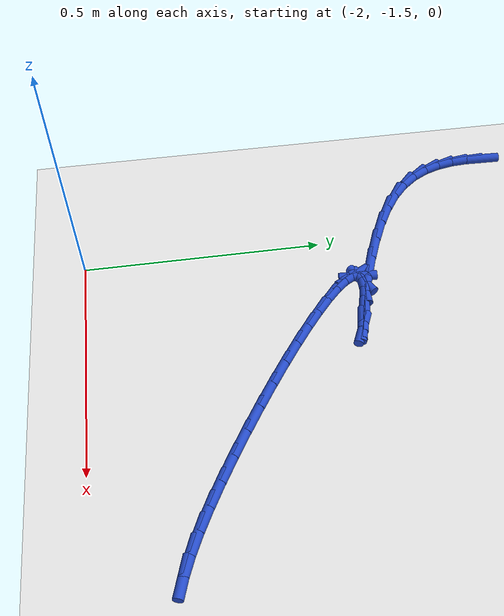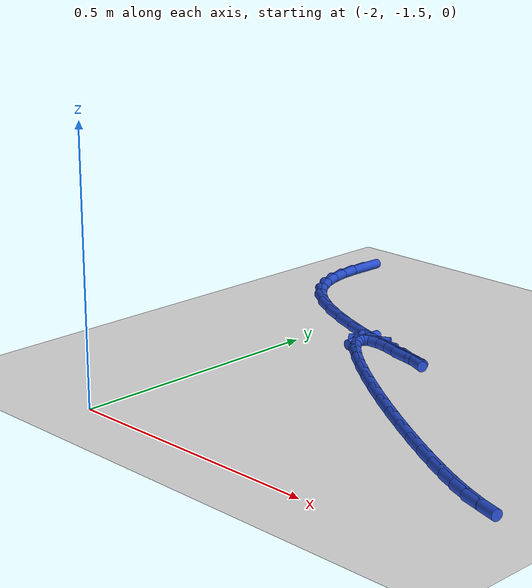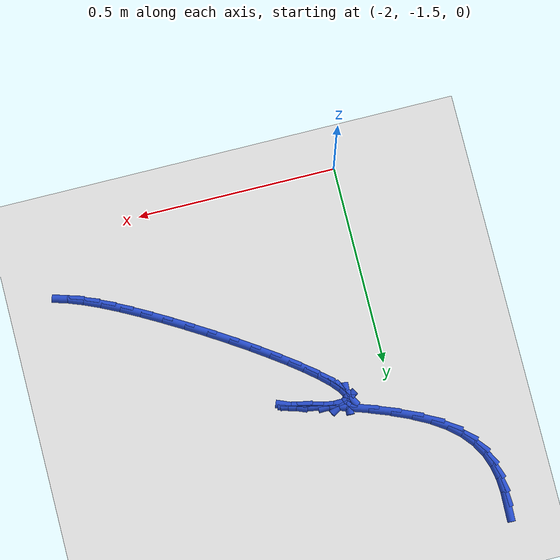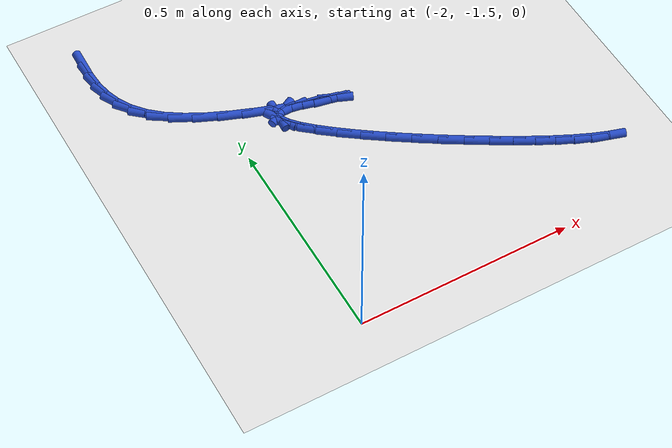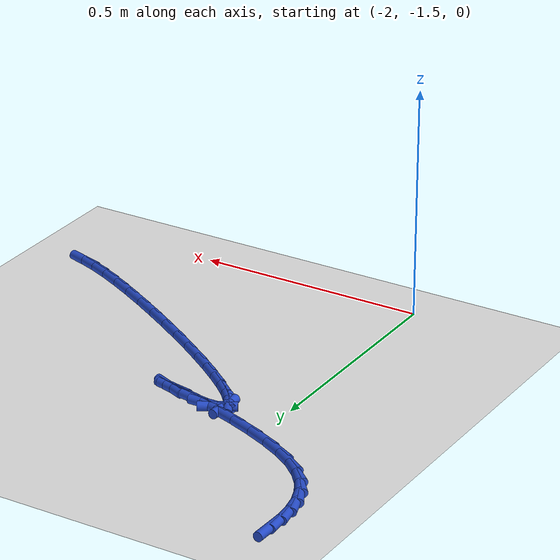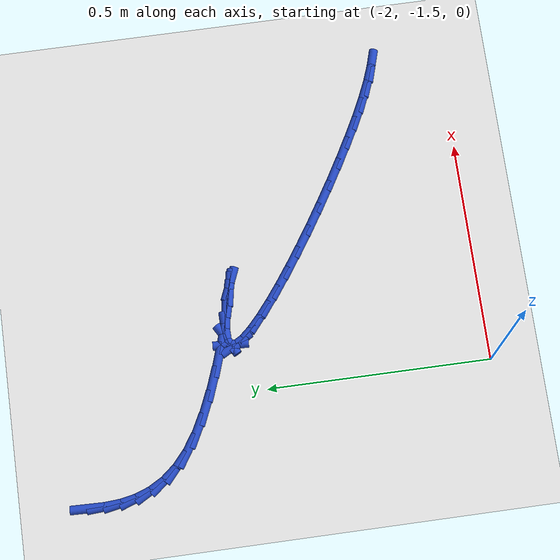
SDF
<sdf version="1.6">
 <world name="default">
  <model name="ground_plane">
   <static>1</static>
   <link name="link">
    <collision name="collision">
     <geometry><plane><normal>0 0 1</normal><size>100 100</size></plane></geometry>
     <surface><friction><ode><mu>100</mu><mu2>50</mu2></ode></friction></surface>
    </collision>
    <visual name="visual">
     <cast_shadows>0</cast_shadows>
     <geometry><plane><normal>0 0 1</normal><size>100 100</size></plane></geometry>
     <material>
      <script><uri>file://media/materials/scripts/gazebo.material</uri><name>Gazebo/WhiteGlow</name></script>
     </material>
    </visual>
   </link>
  </model>
  <model name="line">
   <link name="link_142">
    <pose>-2.2060614680005473 -0.5824622006342828 0.01 0 1.57 1.5439540540339907</pose>
    <collision name="collision">
     <geometry><cylinder><radius>0.01</radius><length>0.08</length></cylinder></geometry>
    </collision>
    <visual name="visual">
     <material>
      <script><name>Gazebo/Blue</name><uri>file://media/materials/scripts/gazebo.material</uri></script>
     </material>
     <geometry><cylinder><radius>0.01</radius><length>0.08</length></cylinder></geometry>
    </visual>
   </link>
   <link name="link_143">
    <pose>-2.2070286627298796 -0.6184860662882931 0.01 0 1.57 -1.50267708291021</pose>
    <collision name="collision">
     <geometry><cylinder><radius>0.01</radius><length>0.08</length></cylinder></geometry>
    </collision>
    <visual name="visual">
     <material>
      <script><name>Gazebo/Blue</name><uri>file://media/materials/scripts/gazebo.material</uri></script>
     </material>
     <geometry><cylinder><radius>0.01</radius><length>0.08</length></cylinder></geometry>
    </visual>
   </link>
   <link name="link_144">
    <pose>-2.2046374664998103 -0.6535348481204029 0.01 0 1.57 -1.3780175634742247</pose>
    <collision name="collision">
     <geometry><cylinder><radius>0.01</radius><length>0.08</length></cylinder></geometry>
    </collision>
    <visual name="visual">
     <material>
      <script><name>Gazebo/Blue</name><uri>file://media/materials/scripts/gazebo.material</uri></script>
     </material>
     <geometry><cylinder><radius>0.01</radius><length>0.08</length></cylinder></geometry>
    </visual>
   </link>
   <link name="link_145">
    <pose>-2.1980136019360077 -0.6874680717013321 0.01 0 1.57 -1.2261344641253864</pose>
    <collision name="collision">
     <geometry><cylinder><radius>0.01</radius><length>0.08</length></cylinder></geometry>
    </collision>
    <visual name="visual">
     <material>
      <script><name>Gazebo/Blue</name><uri>file://media/materials/scripts/gazebo.material</uri></script>
     </material>
     <geometry><cylinder><radius>0.01</radius><length>0.08</length></cylinder></geometry>
    </visual>
   </link>
   <link name="link_146">
    <pose>-2.1862827916641425 -0.7201452626018013 0.01 0 1.57 -1.0555785944395093</pose>
    <collision name="collision">
     <geometry><cylinder><radius>0.01</radius><length>0.08</length></cylinder></geometry>
    </collision>
    <visual name="visual">
     <material>
      <script><name>Gazebo/Blue</name><uri>file://media/materials/scripts/gazebo.material</uri></script>
     </material>
     <geometry><cylinder><radius>0.01</radius><length>0.08</length></cylinder></geometry>
    </visual>
   </link>
   <link name="link_147">
    <pose>-2.1685707583098806 -0.7514259463925312 0.01 0 1.57 -0.8804168311734535</pose>
    <collision name="collision">
     <geometry><cylinder><radius>0.01</radius><length>0.08</length></cylinder></geometry>
    </collision>
    <visual name="visual">
     <material>
      <script><name>Gazebo/Blue</name><uri>file://media/materials/scripts/gazebo.material</uri></script>
     </material>
     <geometry><cylinder><radius>0.01</radius><length>0.08</length></cylinder></geometry>
    </visual>
   </link>
   <link name="link_148">
    <pose>-2.1440032244988947 -0.7811696486442407 0.01 0 1.57 -0.7154195747433033</pose>
    <collision name="collision">
     <geometry><cylinder><radius>0.01</radius><length>0.08</length></cylinder></geometry>
    </collision>
    <visual name="visual">
     <material>
      <script><name>Gazebo/Blue</name><uri>file://media/materials/scripts/gazebo.material</uri></script>
     </material>
     <geometry><cylinder><radius>0.01</radius><length>0.08</length></cylinder></geometry>
    </visual>
   </link>
   <link name="link_149">
    <pose>-2.111705912856851 -0.8092358949276504 0.01 0 1.57 -0.5733788609735283</pose>
    <collision name="collision">
     <geometry><cylinder><radius>0.01</radius><length>0.08</length></cylinder></geometry>
    </collision>
    <visual name="visual">
     <material>
      <script><name>Gazebo/Blue</name><uri>file://media/materials/scripts/gazebo.material</uri></script>
     </material>
     <geometry><cylinder><radius>0.01</radius><length>0.08</length></cylinder></geometry>
    </visual>
   </link>
   <link name="link_150">
    <pose>-2.0710723477474864 -0.8354748550734248 0.01 0 1.57 -0.4730184880661045</pose>
    <collision name="collision">
     <geometry><cylinder><radius>0.01</radius><length>0.08</length></cylinder></geometry>
    </collision>
    <visual name="visual">
     <material>
      <script><name>Gazebo/Blue</name><uri>file://media/materials/scripts/gazebo.material</uri></script>
     </material>
     <geometry><cylinder><radius>0.01</radius><length>0.08</length></cylinder></geometry>
    </visual>
   </link>
   <link name="link_151">
    <pose>-2.023823428511451 -0.8596553913170898 0.01 0 1.57 -0.4051396089160203</pose>
    <collision name="collision">
     <geometry><cylinder><radius>0.01</radius><length>0.08</length></cylinder></geometry>
    </collision>
    <visual name="visual">
     <material>
      <script><name>Gazebo/Blue</name><uri>file://media/materials/scripts/gazebo.material</uri></script>
     </material>
     <geometry><cylinder><radius>0.01</radius><length>0.08</length></cylinder></geometry>
    </visual>
   </link>
   <link name="link_152">
    <pose>-1.972876926422738 -0.88150455278732 0.01 0 1.57 -0.35623928165554297</pose>
    <collision name="collision">
     <geometry><cylinder><radius>0.01</radius><length>0.08</length></cylinder></geometry>
    </collision>
    <visual name="visual">
     <material>
      <script><name>Gazebo/Blue</name><uri>file://media/materials/scripts/gazebo.material</uri></script>
     </material>
     <geometry><cylinder><radius>0.01</radius><length>0.08</length></cylinder></geometry>
    </visual>
   </link>
   <link name="link_153">
    <pose>-1.921160460219138 -0.9007490445884683 0.01 0 1.57 -0.3189680747272209</pose>
    <collision name="collision">
     <geometry><cylinder><radius>0.01</radius><length>0.08</length></cylinder></geometry>
    </collision>
    <visual name="visual">
     <material>
      <script><name>Gazebo/Blue</name><uri>file://media/materials/scripts/gazebo.material</uri></script>
     </material>
     <geometry><cylinder><radius>0.01</radius><length>0.08</length></cylinder></geometry>
    </visual>
   </link>
   <link name="link_154">
    <pose>-1.871601648638444 -0.9171155718248878 0.01 0 1.57 -0.2888391577044447</pose>
    <collision name="collision">
     <geometry><cylinder><radius>0.01</radius><length>0.08</length></cylinder></geometry>
    </collision>
    <visual name="visual">
     <material>
      <script><name>Gazebo/Blue</name><uri>file://media/materials/scripts/gazebo.material</uri></script>
     </material>
     <geometry><cylinder><radius>0.01</radius><length>0.08</length></cylinder></geometry>
    </visual>
   </link>
   <link name="link_155">
    <pose>-1.8271281104184451 -0.9303308396009303 0.01 0 1.57 -0.26233957564700644</pose>
    <collision name="collision">
     <geometry><cylinder><radius>0.01</radius><length>0.08</length></cylinder></geometry>
    </collision>
    <visual name="visual">
     <material>
      <script><name>Gazebo/Blue</name><uri>file://media/materials/scripts/gazebo.material</uri></script>
     </material>
     <geometry><cylinder><radius>0.01</radius><length>0.08</length></cylinder></geometry>
    </visual>
   </link>
   <link name="link_156">
    <pose>-1.7906674642969356 -0.9401215530209491 0.01 0 1.57 -0.2343601988529932</pose>
    <collision name="collision">
     <geometry><cylinder><radius>0.01</radius><length>0.08</length></cylinder></geometry>
    </collision>
    <visual name="visual">
     <material>
      <script><name>Gazebo/Blue</name><uri>file://media/materials/scripts/gazebo.material</uri></script>
     </material>
     <geometry><cylinder><radius>0.01</radius><length>0.08</length></cylinder></geometry>
    </visual>
   </link>
   <link name="link_157">
    <pose>-1.7651473290117061 -0.946214417189297 0.01 0 1.57 -0.18011713061698176</pose>
    <collision name="collision">
     <geometry><cylinder><radius>0.01</radius><length>0.08</length></cylinder></geometry>
    </collision>
    <visual name="visual">
     <material>
      <script><name>Gazebo/Blue</name><uri>file://media/materials/scripts/gazebo.material</uri></script>
     </material>
     <geometry><cylinder><radius>0.01</radius><length>0.08</length></cylinder></geometry>
    </visual>
   </link>
   <link name="link_158">
    <pose>-1.7534953233005475 -0.9483361372103264 0.01 0 1.57 -0.39138928292513353</pose>
    <collision name="collision">
     <geometry><cylinder><radius>0.01</radius><length>0.08</length></cylinder></geometry>
    </collision>
    <visual name="visual">
     <material>
      <script><name>Gazebo/Blue</name><uri>file://media/materials/scripts/gazebo.material</uri></script>
     </material>
     <geometry><cylinder><radius>0.01</radius><length>0.08</length></cylinder></geometry>
    </visual>
   </link>
   <link name="link_159">
    <pose>-1.7586390659012516 -0.9462134181883902 0.01 0 1.57 -0.2604525146423663</pose>
    <collision name="collision">
     <geometry><cylinder><radius>0.01</radius><length>0.08</length></cylinder></geometry>
    </collision>
    <visual name="visual">
     <material>
      <script><name>Gazebo/Blue</name><uri>file://media/materials/scripts/gazebo.material</uri></script>
     </material>
     <geometry><cylinder><radius>0.01</radius><length>0.08</length></cylinder></geometry>
    </visual>
   </link>
   <link name="link_160">
    <pose>-1.7829522058892495 -0.9397338171463464 0.01 0 1.57 -0.22238021945481837</pose>
    <collision name="collision">
     <geometry><cylinder><radius>0.01</radius><length>0.08</length></cylinder></geometry>
    </collision>
    <visual name="visual">
     <material>
      <script><name>Gazebo/Blue</name><uri>file://media/materials/scripts/gazebo.material</uri></script>
     </material>
     <geometry><cylinder><radius>0.01</radius><length>0.08</length></cylinder></geometry>
    </visual>
   </link>
   <link name="link_161">
    <pose>-1.8197812419385826 -0.9314060354753455 0.01 0 1.57 -0.15536994705351218</pose>
    <collision name="collision">
     <geometry><cylinder><radius>0.01</radius><length>0.08</length></cylinder></geometry>
    </collision>
    <visual name="visual">
     <material>
      <script><name>Gazebo/Blue</name><uri>file://media/materials/scripts/gazebo.material</uri></script>
     </material>
     <geometry><cylinder><radius>0.01</radius><length>0.08</length></cylinder></geometry>
    </visual>
   </link>
   <link name="link_162">
    <pose>-1.8551365980980286 -0.925868243347586 0.01 0 1.57 0.02391345792212939</pose>
    <collision name="collision">
     <geometry><cylinder><radius>0.01</radius><length>0.08</length></cylinder></geometry>
    </collision>
    <visual name="visual">
     <material>
      <script><name>Gazebo/Blue</name><uri>file://media/materials/scripts/gazebo.material</uri></script>
     </material>
     <geometry><cylinder><radius>0.01</radius><length>0.08</length></cylinder></geometry>
    </visual>
   </link>
   <link name="link_163">
    <pose>-1.8787843363745018 -0.9264338503607021 0.01 0 1.57 0.515953940201506</pose>
    <collision name="collision">
     <geometry><cylinder><radius>0.01</radius><length>0.08</length></cylinder></geometry>
    </collision>
    <visual name="visual">
     <material>
      <script><name>Gazebo/Blue</name><uri>file://media/materials/scripts/gazebo.material</uri></script>
     </material>
     <geometry><cylinder><radius>0.01</radius><length>0.08</length></cylinder></geometry>
    </visual>
   </link>
   <link name="link_164">
    <pose>-1.8903255670519126 -0.9329800566052698 0.01 0 1.57 1.525970107033578</pose>
    <collision name="collision">
     <geometry><cylinder><radius>0.01</radius><length>0.08</length></cylinder></geometry>
    </collision>
    <visual name="visual">
     <material>
      <script><name>Gazebo/Blue</name><uri>file://media/materials/scripts/gazebo.material</uri></script>
     </material>
     <geometry><cylinder><radius>0.01</radius><length>0.08</length></cylinder></geometry>
    </visual>
   </link>
   <link name="link_165">
    <pose>-1.8908585017814417 -0.944860998755564 0.01 0 1.57 -1.0558145089254987</pose>
    <collision name="collision">
     <geometry><cylinder><radius>0.01</radius><length>0.08</length></cylinder></geometry>
    </collision>
    <visual name="visual">
     <material>
      <script><name>Gazebo/Blue</name><uri>file://media/materials/scripts/gazebo.material</uri></script>
     </material>
     <geometry><cylinder><radius>0.01</radius><length>0.08</length></cylinder></geometry>
    </visual>
   </link>
   <link name="link_166">
    <pose>-1.8814813522142697 -0.9614308134858595 0.01 0 1.57 -0.847783250594407</pose>
    <collision name="collision">
     <geometry><cylinder><radius>0.01</radius><length>0.08</length></cylinder></geometry>
    </collision>
    <visual name="visual">
     <material>
      <script><name>Gazebo/Blue</name><uri>file://media/materials/scripts/gazebo.material</uri></script>
     </material>
     <geometry><cylinder><radius>0.01</radius><length>0.08</length></cylinder></geometry>
    </visual>
   </link>
   <link name="link_167">
    <pose>-1.8632923300015796 -0.9820436374704317 0.01 0 1.57 -0.7474958132116984</pose>
    <collision name="collision">
     <geometry><cylinder><radius>0.01</radius><length>0.08</length></cylinder></geometry>
    </collision>
    <visual name="visual">
     <material>
      <script><name>Gazebo/Blue</name><uri>file://media/materials/scripts/gazebo.material</uri></script>
     </material>
     <geometry><cylinder><radius>0.01</radius><length>0.08</length></cylinder></geometry>
    </visual>
   </link>
   <link name="link_168">
    <pose>-1.837389646794551 -1.0060536073835555 0.01 0 1.57 -0.6885873807225541</pose>
    <collision name="collision">
     <geometry><cylinder><radius>0.01</radius><length>0.08</length></cylinder></geometry>
    </collision>
    <visual name="visual">
     <material>
      <script><name>Gazebo/Blue</name><uri>file://media/materials/scripts/gazebo.material</uri></script>
     </material>
     <geometry><cylinder><radius>0.01</radius><length>0.08</length></cylinder></geometry>
    </visual>
   </link>
   <link name="link_169">
    <pose>-1.8048715142443659 -1.0328148598995055 0.01 0 1.57 -0.649199999590228</pose>
    <collision name="collision">
     <geometry><cylinder><radius>0.01</radius><length>0.08</length></cylinder></geometry>
    </collision>
    <visual name="visual">
     <material>
      <script><name>Gazebo/Blue</name><uri>file://media/materials/scripts/gazebo.material</uri></script>
     </material>
     <geometry><cylinder><radius>0.01</radius><length>0.08</length></cylinder></geometry>
    </visual>
   </link>
   <link name="link_170">
    <pose>-1.766836144002204 -1.0616815316925583 0.01 0 1.57 -0.6202753605104052</pose>
    <collision name="collision">
     <geometry><cylinder><radius>0.01</radius><length>0.08</length></cylinder></geometry>
    </collision>
    <visual name="visual">
     <material>
      <script><name>Gazebo/Blue</name><uri>file://media/materials/scripts/gazebo.material</uri></script>
     </material>
     <geometry><cylinder><radius>0.01</radius><length>0.08</length></cylinder></geometry>
    </visual>
   </link>
   <link name="link_171">
    <pose>-1.724381747719249 -1.092007759436986 0.01 0 1.57 -0.5973675026712848</pose>
    <collision name="collision">
     <geometry><cylinder><radius>0.01</radius><length>0.08</length></cylinder></geometry>
    </collision>
    <visual name="visual">
     <material>
      <script><name>Gazebo/Blue</name><uri>file://media/materials/scripts/gazebo.material</uri></script>
     </material>
     <geometry><cylinder><radius>0.01</radius><length>0.08</length></cylinder></geometry>
    </visual>
   </link>
   <link name="link_172">
    <pose>-1.6786065370466807 -1.1231476798070659 0.01 0 1.57 -0.5779725035913118</pose>
    <collision name="collision">
     <geometry><cylinder><radius>0.01</radius><length>0.08</length></cylinder></geometry>
    </collision>
    <visual name="visual">
     <material>
      <script><name>Gazebo/Blue</name><uri>file://media/materials/scripts/gazebo.material</uri></script>
     </material>
     <geometry><cylinder><radius>0.01</radius><length>0.08</length></cylinder></geometry>
    </visual>
   </link>
   <link name="link_173">
    <pose>-1.6306087236356805 -1.154455429477072 0.01 0 1.57 -0.5604758502830485</pose>
    <collision name="collision">
     <geometry><cylinder><radius>0.01</radius><length>0.08</length></cylinder></geometry>
    </collision>
    <visual name="visual">
     <material>
      <script><name>Gazebo/Blue</name><uri>file://media/materials/scripts/gazebo.material</uri></script>
     </material>
     <geometry><cylinder><radius>0.01</radius><length>0.08</length></cylinder></geometry>
    </visual>
   </link>
   <link name="link_174">
    <pose>-1.5814865191374292 -1.1852851451212798 0.01 0 1.57 -0.5436564885616774</pose>
    <collision name="collision">
     <geometry><cylinder><radius>0.01</radius><length>0.08</length></cylinder></geometry>
    </collision>
    <visual name="visual">
     <material>
      <script><name>Gazebo/Blue</name><uri>file://media/materials/scripts/gazebo.material</uri></script>
     </material>
     <geometry><cylinder><radius>0.01</radius><length>0.08</length></cylinder></geometry>
    </visual>
   </link>
   <link name="link_175">
    <pose>-1.5323381352031085 -1.2149909634139635 0.01 0 1.57 -0.5263892415757679</pose>
    <collision name="collision">
     <geometry><cylinder><radius>0.01</radius><length>0.08</length></cylinder></geometry>
    </collision>
    <visual name="visual">
     <material>
      <script><name>Gazebo/Blue</name><uri>file://media/materials/scripts/gazebo.material</uri></script>
     </material>
     <geometry><cylinder><radius>0.01</radius><length>0.08</length></cylinder></geometry>
    </visual>
   </link>
   <link name="link_176">
    <pose>-1.4842617834838994 -1.242927021029399 0.01 0 1.57 -0.5073821127489822</pose>
    <collision name="collision">
     <geometry><cylinder><radius>0.01</radius><length>0.08</length></cylinder></geometry>
    </collision>
    <visual name="visual">
     <material>
      <script><name>Gazebo/Blue</name><uri>file://media/materials/scripts/gazebo.material</uri></script>
     </material>
     <geometry><cylinder><radius>0.01</radius><length>0.08</length></cylinder></geometry>
    </visual>
   </link>
   <link name="link_177">
    <pose>-1.4383556756309814 -1.2684474546418616 0.01 0 1.57 -0.48439092434422065</pose>
    <collision name="collision">
     <geometry><cylinder><radius>0.01</radius><length>0.08</length></cylinder></geometry>
    </collision>
    <visual name="visual">
     <material>
      <script><name>Gazebo/Blue</name><uri>file://media/materials/scripts/gazebo.material</uri></script>
     </material>
     <geometry><cylinder><radius>0.01</radius><length>0.08</length></cylinder></geometry>
    </visual>
   </link>
   <link name="link_178">
    <pose>-1.395489617061351 -1.291003775653513 0.01 0 1.57 -0.45341636407758434</pose>
    <collision name="collision">
     <geometry><cylinder><radius>0.01</radius><length>0.08</length></cylinder></geometry>
    </collision>
    <visual name="visual">
     <material>
      <script><name>Gazebo/Blue</name><uri>file://media/materials/scripts/gazebo.material</uri></script>
     </material>
     <geometry><cylinder><radius>0.01</radius><length>0.08</length></cylinder></geometry>
    </visual>
   </link>
   <link name="link_179">
    <pose>-1.3555275164788754 -1.3104763319169395 0.01 0 1.57 -0.41226635340827056</pose>
    <collision name="collision">
     <geometry><cylinder><radius>0.01</radius><length>0.08</length></cylinder></geometry>
    </collision>
    <visual name="visual">
     <material>
      <script><name>Gazebo/Blue</name><uri>file://media/materials/scripts/gazebo.material</uri></script>
     </material>
     <geometry><cylinder><radius>0.01</radius><length>0.08</length></cylinder></geometry>
    </visual>
   </link>
   <link name="link_180">
    <pose>-1.318056457362957 -1.3268634881199548 0.01 0 1.57 -0.35945840185981887</pose>
    <collision name="collision">
     <geometry><cylinder><radius>0.01</radius><length>0.08</length></cylinder></geometry>
    </collision>
    <visual name="visual">
     <material>
      <script><name>Gazebo/Blue</name><uri>file://media/materials/scripts/gazebo.material</uri></script>
     </material>
     <geometry><cylinder><radius>0.01</radius><length>0.08</length></cylinder></geometry>
    </visual>
   </link>
   <link name="link_181">
    <pose>-1.2826635148995564 -1.340163612486052 0.01 0 1.57 -0.29398825293737246</pose>
    <collision name="collision">
     <geometry><cylinder><radius>0.01</radius><length>0.08</length></cylinder></geometry>
    </collision>
    <visual name="visual">
     <material>
      <script><name>Gazebo/Blue</name><uri>file://media/materials/scripts/gazebo.material</uri></script>
     </material>
     <geometry><cylinder><radius>0.01</radius><length>0.08</length></cylinder></geometry>
    </visual>
   </link>
  </model>
 </world>
</sdf>
